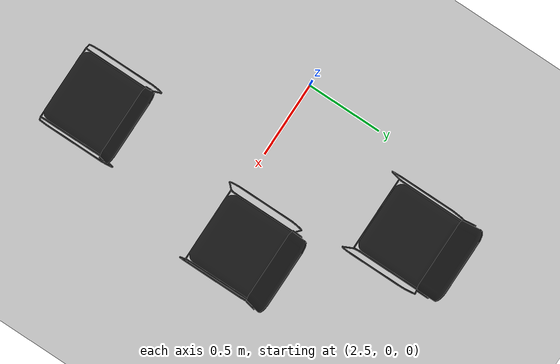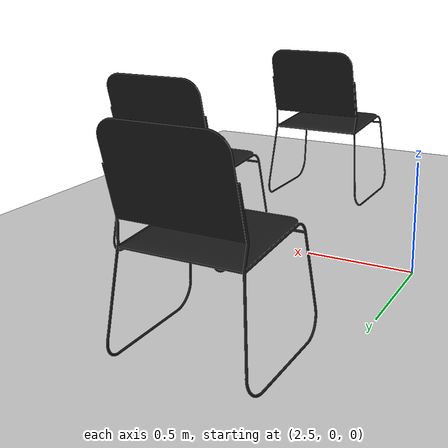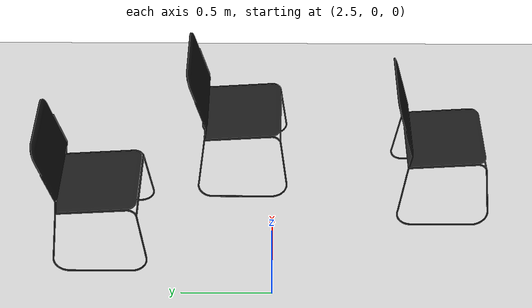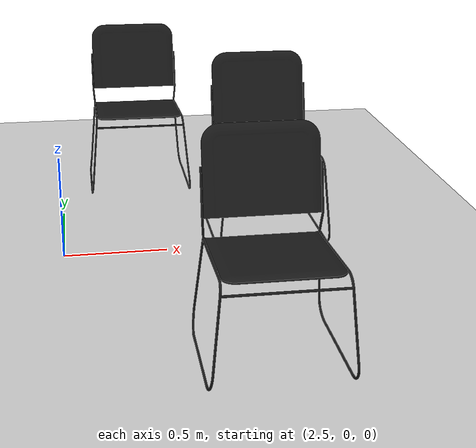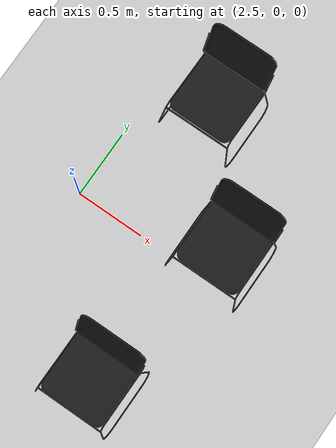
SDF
<?xml version="1.0" ?>
<sdf version="1.4">
  <!-- We use a custom world for the rrbot so that the camera angle is launched correctly -->
  <!-- teset-->
  <world name="default">

  <plugin name="xbot2_clock" filename="libxbot2_gz_clock.so"/>

  <gravity>0 0 -9.81</gravity>

  <model name="ground_plane">
    <static>true</static>
    <link name="link">
      <collision name="collision">
        <geometry>
          <plane>
            <normal>0 0 1</normal>
            <size>100 100</size>
          </plane>
        </geometry>
        <surface>
          <friction>
            <ode>
              <mu>1</mu>
              <mu2>1</mu2>
            </ode>
          </friction>
        </surface>
      </collision>
      <visual name="visual">
        <cast_shadows>false</cast_shadows>
        <geometry>
          <plane>
            <normal>0 0 1</normal>
            <size>100 100</size>
          </plane>
        </geometry>
        <material>
          <script>
            <uri>file://media/materials/scripts/gazebo.material</uri>
            <name>Gazebo/LightGrey</name>
          </script>
        </material>
      </visual>
    </link>
  </model>

    <model name='chair_3'>
      <link name='link_4'>
        <pose>-0.282457 -0.259387 0 0 -0 0</pose>
        <visual name='visual'>
          <pose>0 0 0 0 -0 0</pose>
          <geometry>
            <mesh>
              <uri>model://chair_3/meshes/model.dae</uri>
              <scale>1 1 1</scale>
            </mesh>
          </geometry>
          <material>
            <lighting>1</lighting>
            <ambient>0 0 0 1</ambient>
            <diffuse>0.1 0.1 0.1 1</diffuse>
            <specular>0.01 0.01 0.01 1</specular>
            <emissive>0 0 0 1</emissive>
          </material>
          <cast_shadows>1</cast_shadows>
          <transparency>0</transparency>
        </visual>
        <collision name='collision'>
          <laser_retro>0</laser_retro>
          <max_contacts>10</max_contacts>
          <pose>0 0 0 0 -0 0</pose>
          <geometry>
            <mesh>
              <uri>model://chair_3/meshes/model.dae</uri>
              <scale>1 1 1</scale>
            </mesh>
          </geometry>
          <surface>
            <contact>
              <ode/>
            </contact>
            <bounce/>
            <friction>
              <torsional>
                <ode/>
              </torsional>
              <ode/>
            </friction>
          </surface>
        </collision>
        <self_collide>0</self_collide>
        <enable_wind>0</enable_wind>
        <kinematic>0</kinematic>
      </link>
      <static>1</static>
      <allow_auto_disable>1</allow_auto_disable>
      <pose>2.93406 0.951641 0 0 -0 0</pose>
    </model>
    <model name='chair_3_0'>
      <link name='link_4'>
        <pose>-0.282457 -0.259387 0 0 -0 0</pose>
        <visual name='visual'>
          <pose>0 0 0 0 -0 0</pose>
          <geometry>
            <mesh>
              <uri>model://chair_3/meshes/model.dae</uri>
              <scale>1 1 1</scale>
            </mesh>
          </geometry>
          <material>
            <lighting>1</lighting>
            <ambient>0 0 0 1</ambient>
            <diffuse>0.1 0.1 0.1 1</diffuse>
            <specular>0.01 0.01 0.01 1</specular>
            <emissive>0 0 0 1</emissive>
          </material>
          <cast_shadows>1</cast_shadows>
          <transparency>0</transparency>
        </visual>
        <collision name='collision'>
          <laser_retro>0</laser_retro>
          <max_contacts>10</max_contacts>
          <pose>0 0 0 0 -0 0</pose>
          <geometry>
            <mesh>
              <uri>model://chair_3/meshes/model.dae</uri>
              <scale>1 1 1</scale>
            </mesh>
          </geometry>
          <surface>
            <contact>
              <ode/>
            </contact>
            <bounce/>
            <friction>
              <torsional>
                <ode/>
              </torsional>
              <ode/>
            </friction>
          </surface>
        </collision>
        <self_collide>0</self_collide>
        <enable_wind>0</enable_wind>
        <kinematic>0</kinematic>
      </link>
      <static>1</static>
      <allow_auto_disable>1</allow_auto_disable>
      <pose>3.5242 0.173409 0 0 -0 0</pose>
    </model>
    <model name='chair_3_1'>
      <link name='link_4'>
        <pose>-0.282457 -0.259387 0 0 -0 0</pose>
        <visual name='visual'>
          <pose>0 0 0 0 -0 0</pose>
          <geometry>
            <mesh>
              <uri>model://chair_3/meshes/model.dae</uri>
              <scale>1 1 1</scale>
            </mesh>
          </geometry>
          <material>
            <lighting>1</lighting>
            <ambient>0 0 0 1</ambient>
            <diffuse>0.1 0.1 0.1 1</diffuse>
            <specular>0.01 0.01 0.01 1</specular>
            <emissive>0 0 0 1</emissive>
          </material>
          <cast_shadows>1</cast_shadows>
          <transparency>0</transparency>
        </visual>
        <collision name='collision'>
          <laser_retro>0</laser_retro>
          <max_contacts>10</max_contacts>
          <pose>0 0 0 0 -0 0</pose>
          <geometry>
            <mesh>
              <uri>model://chair_3/meshes/model.dae</uri>
              <scale>1 1 1</scale>
            </mesh>
          </geometry>
          <surface>
            <contact>
              <ode/>
            </contact>
            <bounce/>
            <friction>
              <torsional>
                <ode/>
              </torsional>
              <ode/>
            </friction>
          </surface>
        </collision>
        <self_collide>0</self_collide>
        <enable_wind>0</enable_wind>
        <kinematic>0</kinematic>
      </link>
      <static>1</static>
      <allow_auto_disable>1</allow_auto_disable>
      <pose>3.30138 -0.982051 0 0 -0 0</pose>
    </model>

      <model name='chair_3'>
        <pose>2.93592 1.30244 0 0 -0 0</pose>
        <scale>1 1 1</scale>
        <link name='link_4'>
          <pose>2.65346 1.04305 0 0 -0 0</pose>
          <velocity>0 0 0 0 -0 0</velocity>
          <acceleration>0 0 0 0 -0 0</acceleration>
          <wrench>0 0 0 0 -0 0</wrench>
        </link>
      </model>
      <model name='chair_3_0'>
        <pose>3.66662 0.173409 0 0 0 -0.909434</pose>
        <scale>1 1 1</scale>
        <link name='link_4'>
          <pose>3.28844 0.236998 0 0 0 -0.909434</pose>
          <velocity>0 0 0 0 -0 0</velocity>
          <acceleration>0 0 0 0 -0 0</acceleration>
          <wrench>0 0 0 0 -0 0</wrench>
        </link>
      </model>
      <model name='chair_3_1'>
        <pose>3.30138 -1.38062 0 0 -0 0</pose>
        <scale>1 1 1</scale>
        <link name='link_4'>
          <pose>3.01892 -1.64 0 0 -0 0</pose>
          <velocity>0 0 0 0 -0 0</velocity>
          <acceleration>0 0 0 0 -0 0</acceleration>
          <wrench>0 0 0 0 -0 0</wrench>
        </link>
      </model>

    <!-- Global light source -->
    <include>
      <uri>model://sun</uri>
    </include>

    <!-- Focus camera on tall pendulum -->
    <gui fullscreen='0'>
      <camera name='user_camera'>
        <pose>4.927360 -4.376610 3.740080 0.000000 0.275643 2.356190</pose>
        <view_controller>orbit</view_controller>
      </camera>
    </gui>

    <physics name="update_rate" type="ode">
      <real_time_update_rate>4000</real_time_update_rate>
      <max_step_size>0.00025</max_step_size>
      <max_contacts>5</max_contacts>
      <bullet>
	<solver>
          <iters>100</iters>
          <sor>1.55</sor>
        </solver>
        <constraints>
          <contact_surface_layer>0.2</contact_surface_layer>
          <cfm>0.005</cfm>
          <erp>0.2</erp>
        </constraints>
      </bullet>
      <ode>
	<solver>
          <iters>50</iters>
          <sor>1.20</sor>
        </solver>
        <constraints>
          <contact_surface_layer>0.0002</contact_surface_layer>
          <contact_max_correcting_vel>500</contact_max_correcting_vel>
          <cfm>0.000001</cfm>
          <erp>0.3</erp>
        </constraints>
      </ode>
    </physics>

  </world>
</sdf>
